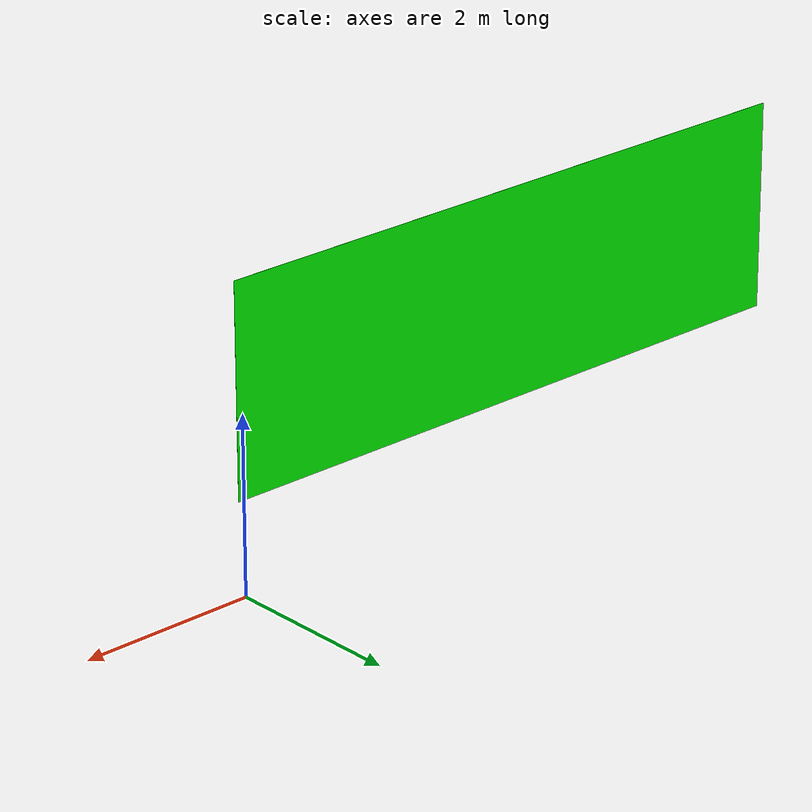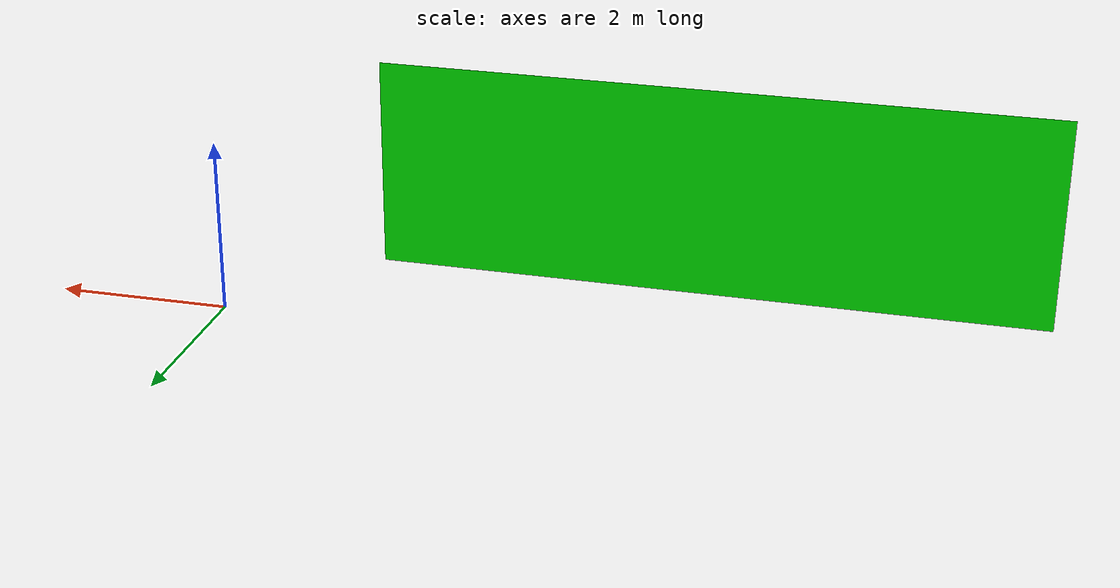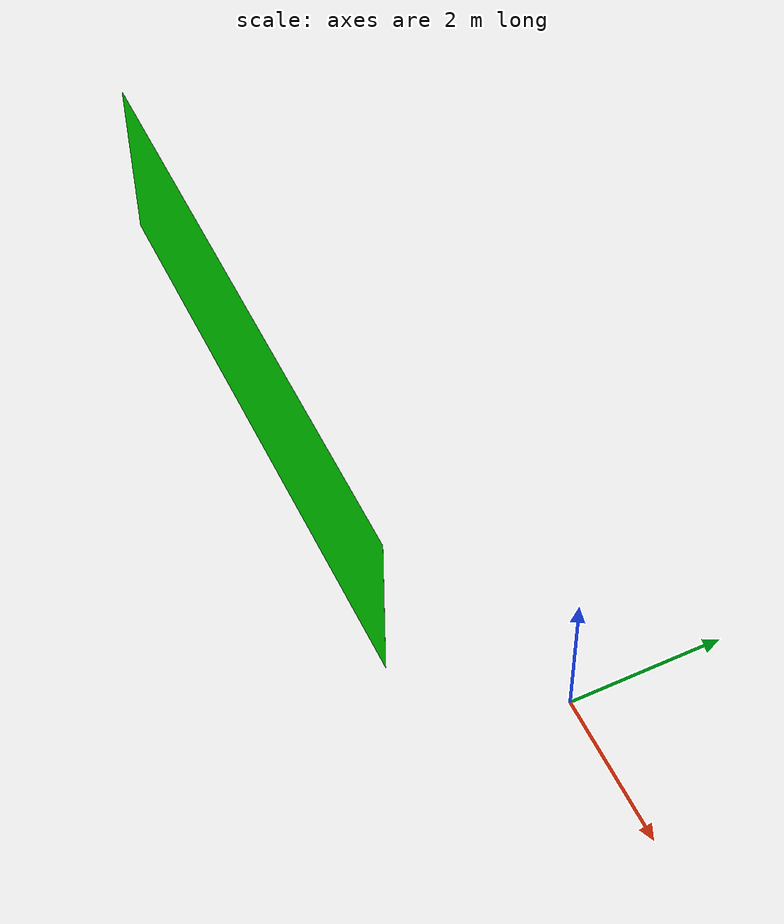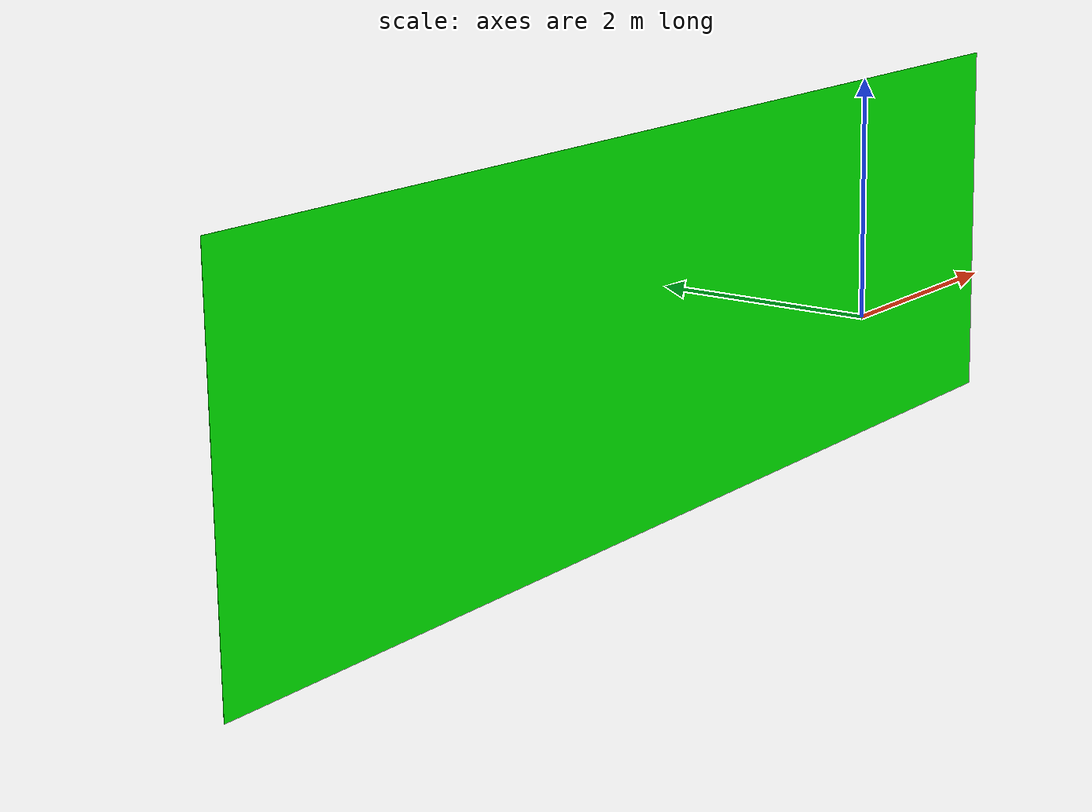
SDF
<?xml version='1.0'?>
<sdf version='1.6'>
  <model name='laser_green'>
    <pose frame=''>-5.285 -1.74 0 0 -0 0</pose>
    <link name='Wall_0'>
      <collision name='Wall_0_Collision'>
        <geometry>
          <box>
            <size>7.85 0.001 2.5</size>
          </box>
        </geometry>
        <pose frame=''>0 0 1.25 0 -0 0</pose>
      </collision>
      <visual name='Wall_0_Visual'>
        <pose frame=''>0 0 1.25 0 -0 0</pose>
        <geometry>
          <box>
            <size>7.85 0.001 2.5</size>
          </box>
        </geometry>
        <material>
          <script>
            <uri>file://media/materials/scripts/gazebo.material</uri>
            <name>Gazebo/Grey</name>
          </script>
          <ambient>0 0.945098 0 1</ambient>
        </material>
      </visual>
      <pose frame=''>0 0 0 0 -0 3.14159</pose>
    </link>
    <static>1</static>
  </model>
</sdf>
